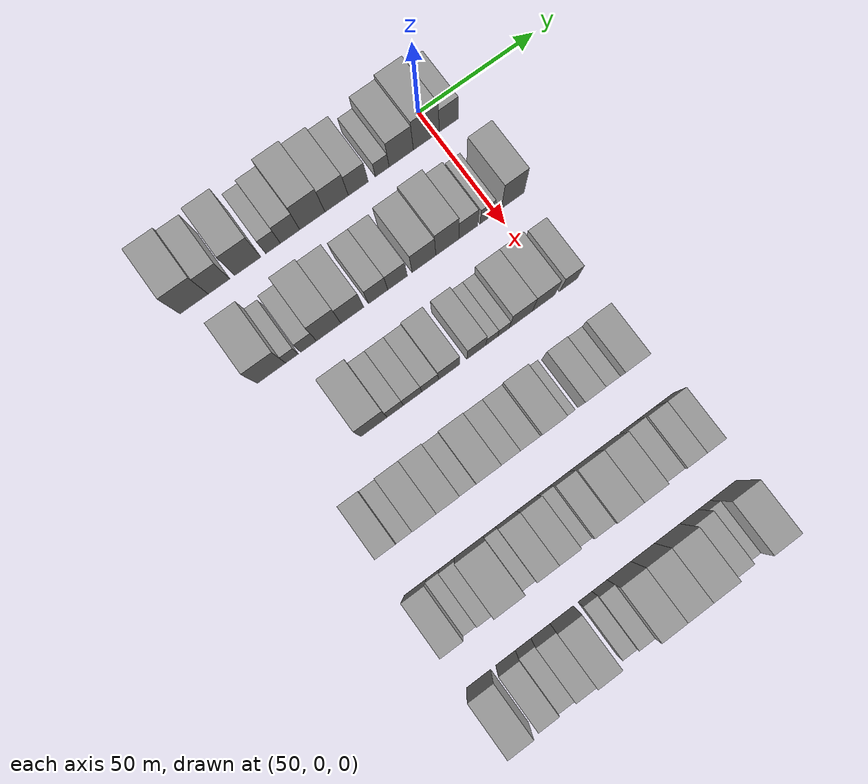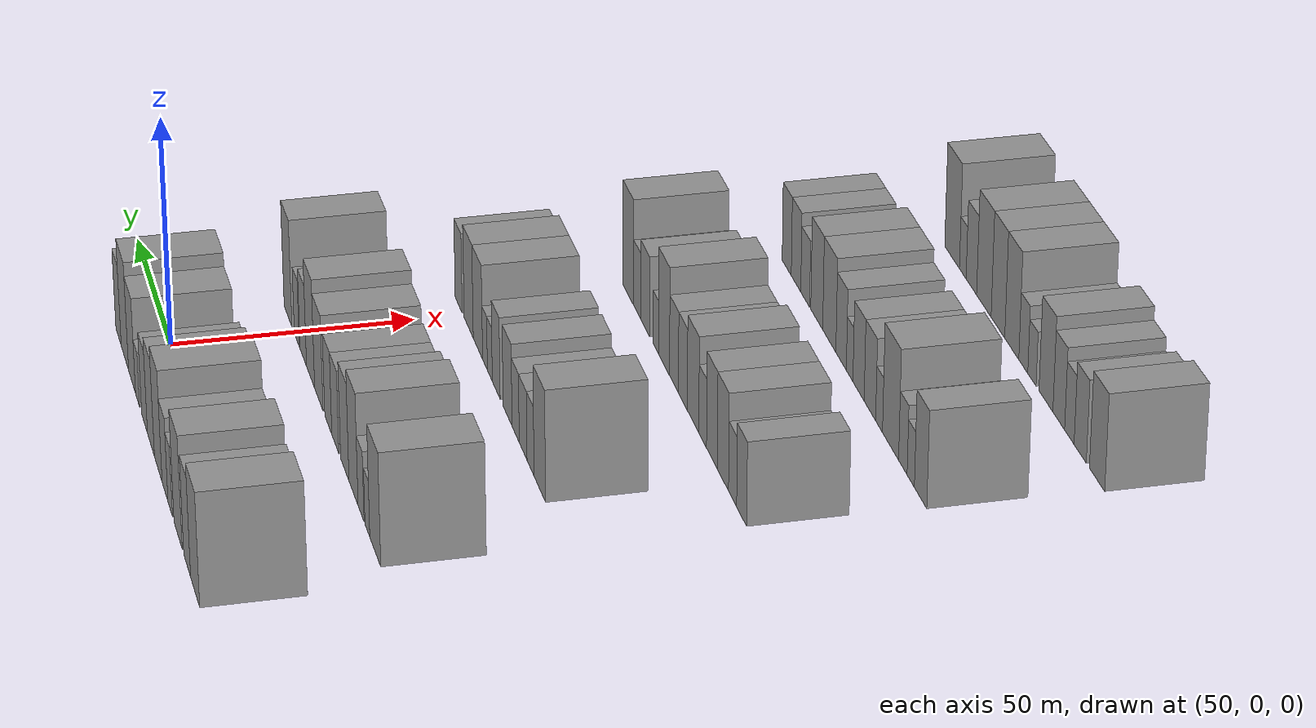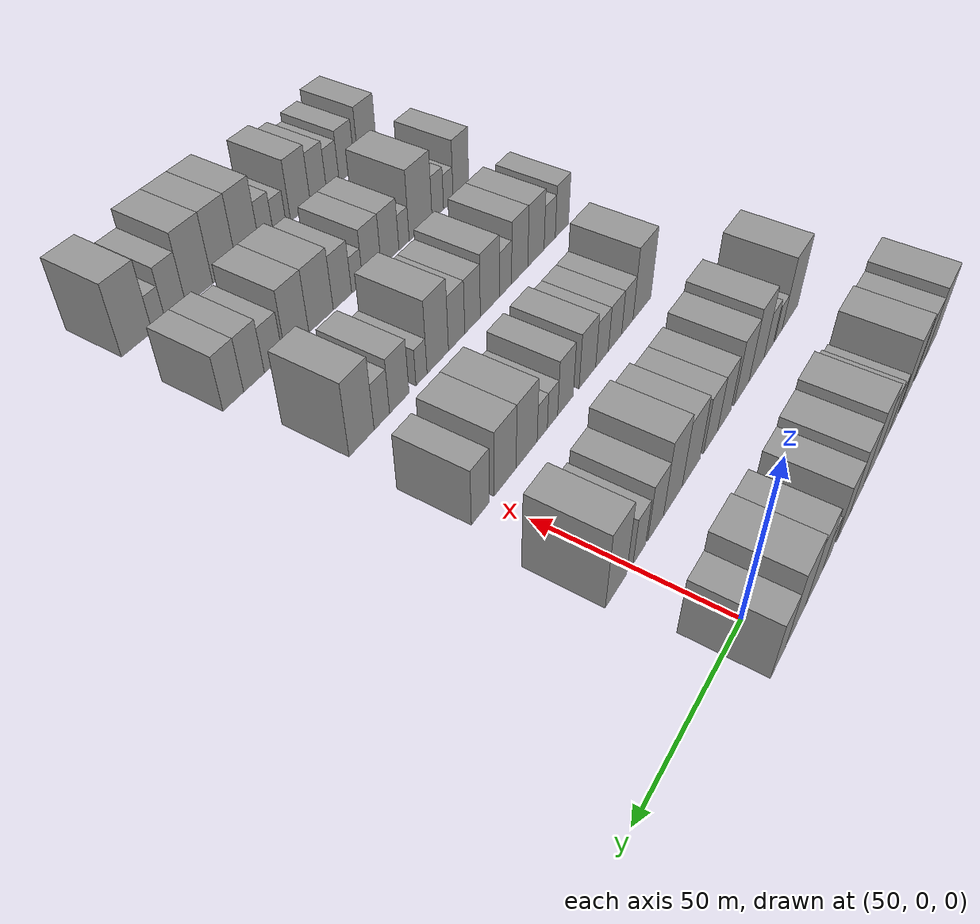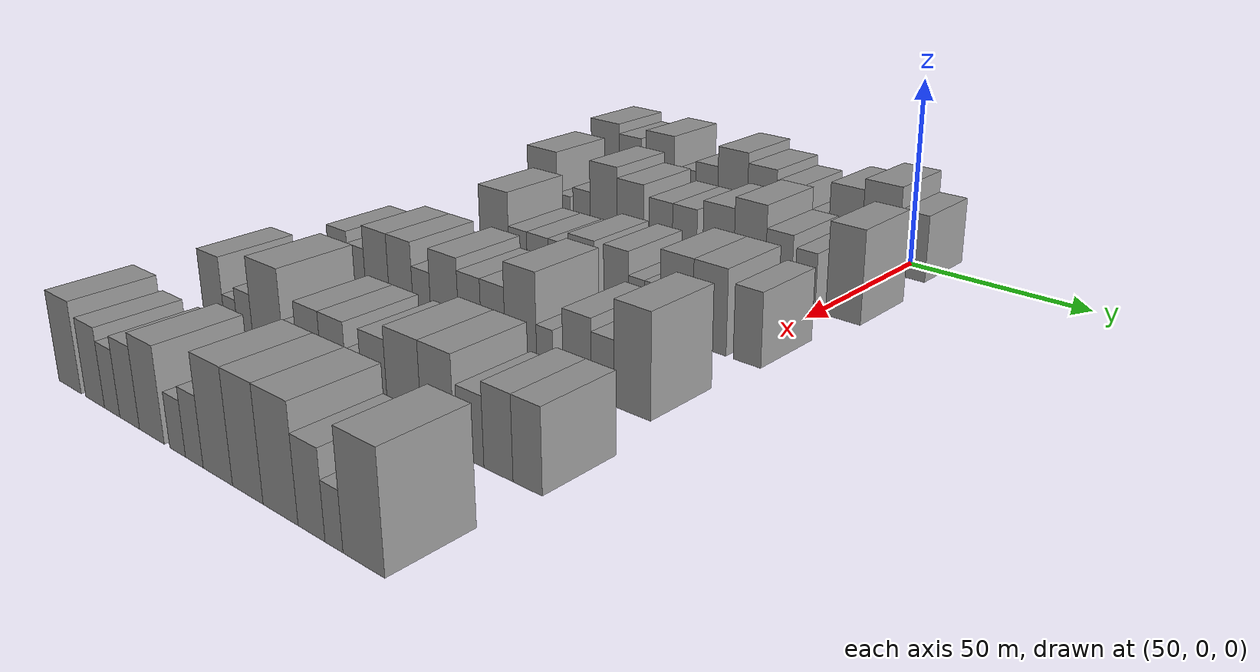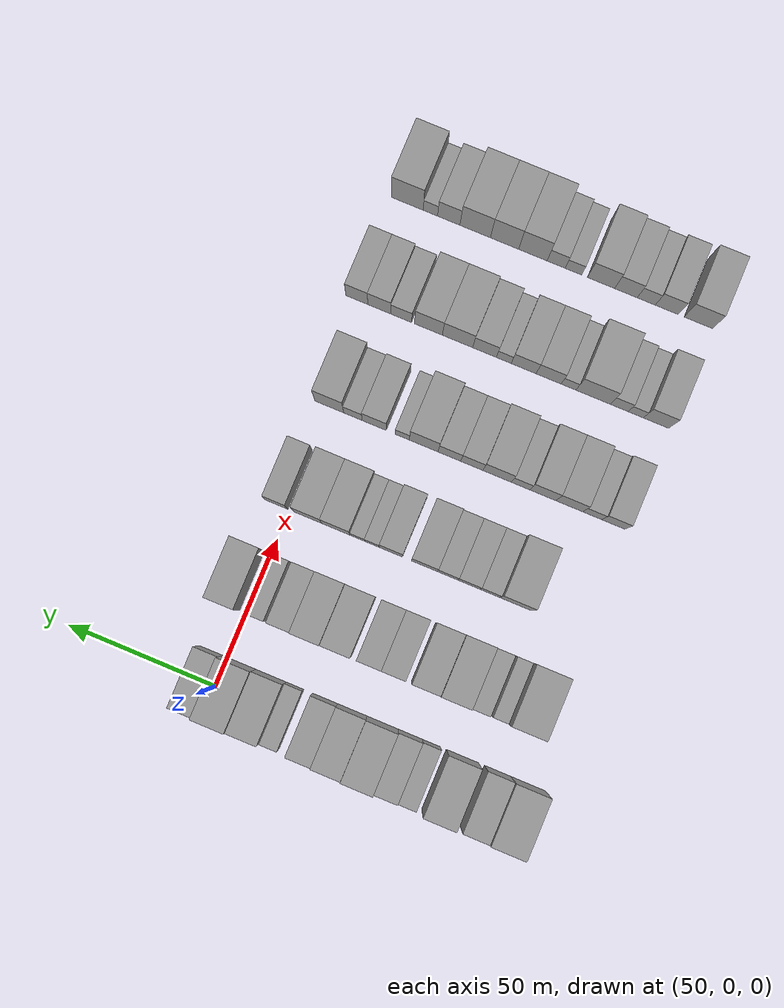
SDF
<sdf version="1.6">
 <world name="default">
  <model name="building_43">
   <static>1</static>
   <pose>50.0000 -101.3900 0 0.000000 0.000000 0.000000</pose>
   <link name="link">
    <pose>0 0 12.00 0 0 0</pose>
    <collision name="collision"><geometry><box><size>20.0000 11.5441 24.0000</size></box></geometry></collision>
    <visual name="visual">
     <cast_shadows>0</cast_shadows>
     <geometry><box><size>20.0000 11.5441 24.0000</size></box></geometry>
     <material>
      <script>
       <uri>model://grey_wall/materials/scripts</uri>
       <uri>model://grey_wall/materials/textures</uri>
       <name>vrc/grey_wall</name>
      </script>
     </material>
    </visual>
   </link>
  </model>
  <model name="building_44">
   <static>1</static>
   <pose>50.0000 -91.1934 0 0.000000 0.000000 0.000000</pose>
   <link name="link">
    <pose>0 0 10.50 0 0 0</pose>
    <collision name="collision"><geometry><box><size>20.0000 8.8491 21.0000</size></box></geometry></collision>
    <visual name="visual">
     <cast_shadows>0</cast_shadows>
     <geometry><box><size>20.0000 8.8491 21.0000</size></box></geometry>
     <material>
      <script>
       <uri>model://grey_wall/materials/scripts</uri>
       <uri>model://grey_wall/materials/textures</uri>
       <name>vrc/grey_wall</name>
      </script>
     </material>
    </visual>
   </link>
  </model>
  <model name="building_45">
   <static>1</static>
   <pose>50.0000 -79.3467 0 0.000000 0.000000 0.000000</pose>
   <link name="link">
    <pose>0 0 12.00 0 0 0</pose>
    <collision name="collision"><geometry><box><size>20.0000 10.8444 24.0000</size></box></geometry></collision>
    <visual name="visual">
     <cast_shadows>0</cast_shadows>
     <geometry><box><size>20.0000 10.8444 24.0000</size></box></geometry>
     <material>
      <script>
       <uri>model://grey_wall/materials/scripts</uri>
       <uri>model://grey_wall/materials/textures</uri>
       <name>vrc/grey_wall</name>
      </script>
     </material>
    </visual>
   </link>
  </model>
  <model name="building_46">
   <static>1</static>
   <pose>50.0000 -68.8663 0 0.000000 0.000000 0.000000</pose>
   <link name="link">
    <pose>0 0 7.50 0 0 0</pose>
    <collision name="collision"><geometry><box><size>20.0000 6.1165 15.0000</size></box></geometry></collision>
    <visual name="visual">
     <cast_shadows>0</cast_shadows>
     <geometry><box><size>20.0000 6.1165 15.0000</size></box></geometry>
     <material>
      <script>
       <uri>model://grey_wall/materials/scripts</uri>
       <uri>model://grey_wall/materials/textures</uri>
       <name>vrc/grey_wall</name>
      </script>
     </material>
    </visual>
   </link>
  </model>
  <model name="building_47">
   <static>1</static>
   <pose>50.0000 -61.7780 0 0.000000 0.000000 0.000000</pose>
   <link name="link">
    <pose>0 0 9.00 0 0 0</pose>
    <collision name="collision"><geometry><box><size>20.0000 8.0601 18.0000</size></box></geometry></collision>
    <visual name="visual">
     <cast_shadows>0</cast_shadows>
     <geometry><box><size>20.0000 8.0601 18.0000</size></box></geometry>
     <material>
      <script>
       <uri>model://grey_wall/materials/scripts</uri>
       <uri>model://grey_wall/materials/textures</uri>
       <name>vrc/grey_wall</name>
      </script>
     </material>
    </visual>
   </link>
  </model>
  <model name="building_48">
   <static>1</static>
   <pose>50.0000 -52.4674 0 0.000000 0.000000 0.000000</pose>
   <link name="link">
    <pose>0 0 12.00 0 0 0</pose>
    <collision name="collision"><geometry><box><size>20.0000 10.5612 24.0000</size></box></geometry></collision>
    <visual name="visual">
     <cast_shadows>0</cast_shadows>
     <geometry><box><size>20.0000 10.5612 24.0000</size></box></geometry>
     <material>
      <script>
       <uri>model://grey_wall/materials/scripts</uri>
       <uri>model://grey_wall/materials/textures</uri>
       <name>vrc/grey_wall</name>
      </script>
     </material>
    </visual>
   </link>
  </model>
  <model name="building_49">
   <static>1</static>
   <pose>50.0000 -42.2517 0 0.000000 0.000000 0.000000</pose>
   <link name="link">
    <pose>0 0 10.50 0 0 0</pose>
    <collision name="collision"><geometry><box><size>20.0000 9.8702 21.0000</size></box></geometry></collision>
    <visual name="visual">
     <cast_shadows>0</cast_shadows>
     <geometry><box><size>20.0000 9.8702 21.0000</size></box></geometry>
     <material>
      <script>
       <uri>model://grey_wall/materials/scripts</uri>
       <uri>model://grey_wall/materials/textures</uri>
       <name>vrc/grey_wall</name>
      </script>
     </material>
    </visual>
   </link>
  </model>
  <model name="building_50">
   <static>1</static>
   <pose>50.0000 -33.1068 0 0.000000 0.000000 0.000000</pose>
   <link name="link">
    <pose>0 0 9.00 0 0 0</pose>
    <collision name="collision"><geometry><box><size>20.0000 8.4197 18.0000</size></box></geometry></collision>
    <visual name="visual">
     <cast_shadows>0</cast_shadows>
     <geometry><box><size>20.0000 8.4197 18.0000</size></box></geometry>
     <material>
      <script>
       <uri>model://grey_wall/materials/scripts</uri>
       <uri>model://grey_wall/materials/textures</uri>
       <name>vrc/grey_wall</name>
      </script>
     </material>
    </visual>
   </link>
  </model>
  <model name="building_51">
   <static>1</static>
   <pose>50.0000 -22.9282 0 0.000000 0.000000 0.000000</pose>
   <link name="link">
    <pose>0 0 6.00 0 0 0</pose>
    <collision name="collision"><geometry><box><size>20.0000 5.9374 12.0000</size></box></geometry></collision>
    <visual name="visual">
     <cast_shadows>0</cast_shadows>
     <geometry><box><size>20.0000 5.9374 12.0000</size></box></geometry>
     <material>
      <script>
       <uri>model://grey_wall/materials/scripts</uri>
       <uri>model://grey_wall/materials/textures</uri>
       <name>vrc/grey_wall</name>
      </script>
     </material>
    </visual>
   </link>
  </model>
  <model name="building_52">
   <static>1</static>
   <pose>50.0000 -14.8010 0 0.000000 0.000000 0.000000</pose>
   <link name="link">
    <pose>0 0 10.50 0 0 0</pose>
    <collision name="collision"><geometry><box><size>20.0000 10.3171 21.0000</size></box></geometry></collision>
    <visual name="visual">
     <cast_shadows>0</cast_shadows>
     <geometry><box><size>20.0000 10.3171 21.0000</size></box></geometry>
     <material>
      <script>
       <uri>model://grey_wall/materials/scripts</uri>
       <uri>model://grey_wall/materials/textures</uri>
       <name>vrc/grey_wall</name>
      </script>
     </material>
    </visual>
   </link>
  </model>
  <model name="building_53">
   <static>1</static>
   <pose>50.0000 -4.0733 0 0.000000 0.000000 0.000000</pose>
   <link name="link">
    <pose>0 0 12.00 0 0 0</pose>
    <collision name="collision"><geometry><box><size>20.0000 11.1382 24.0000</size></box></geometry></collision>
    <visual name="visual">
     <cast_shadows>0</cast_shadows>
     <geometry><box><size>20.0000 11.1382 24.0000</size></box></geometry>
     <material>
      <script>
       <uri>model://grey_wall/materials/scripts</uri>
       <uri>model://grey_wall/materials/textures</uri>
       <name>vrc/grey_wall</name>
      </script>
     </material>
    </visual>
   </link>
  </model>
  <model name="building_54">
   <static>1</static>
   <pose>50.0000 5.5672 0 0.000000 0.000000 0.000000</pose>
   <link name="link">
    <pose>0 0 9.00 0 0 0</pose>
    <collision name="collision"><geometry><box><size>20.0000 8.1429 18.0000</size></box></geometry></collision>
    <visual name="visual">
     <cast_shadows>0</cast_shadows>
     <geometry><box><size>20.0000 8.1429 18.0000</size></box></geometry>
     <material>
      <script>
       <uri>model://grey_wall/materials/scripts</uri>
       <uri>model://grey_wall/materials/textures</uri>
       <name>vrc/grey_wall</name>
      </script>
     </material>
    </visual>
   </link>
  </model>
  <model name="building_168">
   <static>1</static>
   <pose>85.0000 -93.7803 0 0.000000 0.000000 0.000000</pose>
   <link name="link">
    <pose>0 0 12.00 0 0 0</pose>
    <collision name="collision"><geometry><box><size>20.0000 11.5986 24.0000</size></box></geometry></collision>
    <visual name="visual">
     <cast_shadows>0</cast_shadows>
     <geometry><box><size>20.0000 11.5986 24.0000</size></box></geometry>
     <material>
      <script>
       <uri>model://grey_wall/materials/scripts</uri>
       <uri>model://grey_wall/materials/textures</uri>
       <name>vrc/grey_wall</name>
      </script>
     </material>
    </visual>
   </link>
  </model>
  <model name="building_169">
   <static>1</static>
   <pose>85.0000 -85.3984 0 0.000000 0.000000 0.000000</pose>
   <link name="link">
    <pose>0 0 6.00 0 0 0</pose>
    <collision name="collision"><geometry><box><size>20.0000 5.1652 12.0000</size></box></geometry></collision>
    <visual name="visual">
     <cast_shadows>0</cast_shadows>
     <geometry><box><size>20.0000 5.1652 12.0000</size></box></geometry>
     <material>
      <script>
       <uri>model://grey_wall/materials/scripts</uri>
       <uri>model://grey_wall/materials/textures</uri>
       <name>vrc/grey_wall</name>
      </script>
     </material>
    </visual>
   </link>
  </model>
  <model name="building_170">
   <static>1</static>
   <pose>85.0000 -78.5708 0 0.000000 0.000000 0.000000</pose>
   <link name="link">
    <pose>0 0 7.50 0 0 0</pose>
    <collision name="collision"><geometry><box><size>20.0000 6.4899 15.0000</size></box></geometry></collision>
    <visual name="visual">
     <cast_shadows>0</cast_shadows>
     <geometry><box><size>20.0000 6.4899 15.0000</size></box></geometry>
     <material>
      <script>
       <uri>model://grey_wall/materials/scripts</uri>
       <uri>model://grey_wall/materials/textures</uri>
       <name>vrc/grey_wall</name>
      </script>
     </material>
    </visual>
   </link>
  </model>
  <model name="building_171">
   <static>1</static>
   <pose>85.0000 -70.2937 0 0.000000 0.000000 0.000000</pose>
   <link name="link">
    <pose>0 0 12.00 0 0 0</pose>
    <collision name="collision"><geometry><box><size>20.0000 10.0643 24.0000</size></box></geometry></collision>
    <visual name="visual">
     <cast_shadows>0</cast_shadows>
     <geometry><box><size>20.0000 10.0643 24.0000</size></box></geometry>
     <material>
      <script>
       <uri>model://grey_wall/materials/scripts</uri>
       <uri>model://grey_wall/materials/textures</uri>
       <name>vrc/grey_wall</name>
      </script>
     </material>
    </visual>
   </link>
  </model>
  <model name="building_172">
   <static>1</static>
   <pose>85.0000 -60.5582 0 0.000000 0.000000 0.000000</pose>
   <link name="link">
    <pose>0 0 10.50 0 0 0</pose>
    <collision name="collision"><geometry><box><size>20.0000 9.4066 21.0000</size></box></geometry></collision>
    <visual name="visual">
     <cast_shadows>0</cast_shadows>
     <geometry><box><size>20.0000 9.4066 21.0000</size></box></geometry>
     <material>
      <script>
       <uri>model://grey_wall/materials/scripts</uri>
       <uri>model://grey_wall/materials/textures</uri>
       <name>vrc/grey_wall</name>
      </script>
     </material>
    </visual>
   </link>
  </model>
  <model name="building_173">
   <static>1</static>
   <pose>85.0000 -49.8305 0 0.000000 0.000000 0.000000</pose>
   <link name="link">
    <pose>0 0 9.00 0 0 0</pose>
    <collision name="collision"><geometry><box><size>20.0000 8.0489 18.0000</size></box></geometry></collision>
    <visual name="visual">
     <cast_shadows>0</cast_shadows>
     <geometry><box><size>20.0000 8.0489 18.0000</size></box></geometry>
     <material>
      <script>
       <uri>model://grey_wall/materials/scripts</uri>
       <uri>model://grey_wall/materials/textures</uri>
       <name>vrc/grey_wall</name>
      </script>
     </material>
    </visual>
   </link>
  </model>
  <model name="building_174">
   <static>1</static>
   <pose>85.0000 -41.7130 0 0.000000 0.000000 0.000000</pose>
   <link name="link">
    <pose>0 0 9.00 0 0 0</pose>
    <collision name="collision"><geometry><box><size>20.0000 8.1860 18.0000</size></box></geometry></collision>
    <visual name="visual">
     <cast_shadows>0</cast_shadows>
     <geometry><box><size>20.0000 8.1860 18.0000</size></box></geometry>
     <material>
      <script>
       <uri>model://grey_wall/materials/scripts</uri>
       <uri>model://grey_wall/materials/textures</uri>
       <name>vrc/grey_wall</name>
      </script>
     </material>
    </visual>
   </link>
  </model>
  <model name="building_175">
   <static>1</static>
   <pose>85.0000 -30.6315 0 0.000000 0.000000 0.000000</pose>
   <link name="link">
    <pose>0 0 10.50 0 0 0</pose>
    <collision name="collision"><geometry><box><size>20.0000 9.9771 21.0000</size></box></geometry></collision>
    <visual name="visual">
     <cast_shadows>0</cast_shadows>
     <geometry><box><size>20.0000 9.9771 21.0000</size></box></geometry>
     <material>
      <script>
       <uri>model://grey_wall/materials/scripts</uri>
       <uri>model://grey_wall/materials/textures</uri>
       <name>vrc/grey_wall</name>
      </script>
     </material>
    </visual>
   </link>
  </model>
  <model name="building_176">
   <static>1</static>
   <pose>85.0000 -20.7263 0 0.000000 0.000000 0.000000</pose>
   <link name="link">
    <pose>0 0 12.00 0 0 0</pose>
    <collision name="collision"><geometry><box><size>20.0000 9.8332 24.0000</size></box></geometry></collision>
    <visual name="visual">
     <cast_shadows>0</cast_shadows>
     <geometry><box><size>20.0000 9.8332 24.0000</size></box></geometry>
     <material>
      <script>
       <uri>model://grey_wall/materials/scripts</uri>
       <uri>model://grey_wall/materials/textures</uri>
       <name>vrc/grey_wall</name>
      </script>
     </material>
    </visual>
   </link>
  </model>
  <model name="building_177">
   <static>1</static>
   <pose>85.0000 -11.8344 0 0.000000 0.000000 0.000000</pose>
   <link name="link">
    <pose>0 0 9.00 0 0 0</pose>
    <collision name="collision"><geometry><box><size>20.0000 7.9506 18.0000</size></box></geometry></collision>
    <visual name="visual">
     <cast_shadows>0</cast_shadows>
     <geometry><box><size>20.0000 7.9506 18.0000</size></box></geometry>
     <material>
      <script>
       <uri>model://grey_wall/materials/scripts</uri>
       <uri>model://grey_wall/materials/textures</uri>
       <name>vrc/grey_wall</name>
      </script>
     </material>
    </visual>
   </link>
  </model>
  <model name="building_178">
   <static>1</static>
   <pose>85.0000 -3.7967 0 0.000000 0.000000 0.000000</pose>
   <link name="link">
    <pose>0 0 7.50 0 0 0</pose>
    <collision name="collision"><geometry><box><size>20.0000 6.1247 15.0000</size></box></geometry></collision>
    <visual name="visual">
     <cast_shadows>0</cast_shadows>
     <geometry><box><size>20.0000 6.1247 15.0000</size></box></geometry>
     <material>
      <script>
       <uri>model://grey_wall/materials/scripts</uri>
       <uri>model://grey_wall/materials/textures</uri>
       <name>vrc/grey_wall</name>
      </script>
     </material>
    </visual>
   </link>
  </model>
  <model name="building_179">
   <static>1</static>
   <pose>85.0000 7.1411 0 0.000000 0.000000 0.000000</pose>
   <link name="link">
    <pose>0 0 12.00 0 0 0</pose>
    <collision name="collision"><geometry><box><size>20.0000 9.7510 24.0000</size></box></geometry></collision>
    <visual name="visual">
     <cast_shadows>0</cast_shadows>
     <geometry><box><size>20.0000 9.7510 24.0000</size></box></geometry>
     <material>
      <script>
       <uri>model://grey_wall/materials/scripts</uri>
       <uri>model://grey_wall/materials/textures</uri>
       <name>vrc/grey_wall</name>
      </script>
     </material>
    </visual>
   </link>
  </model>
  <model name="building_293">
   <static>1</static>
   <pose>120.0000 -76.6047 0 0.000000 0.000000 0.000000</pose>
   <link name="link">
    <pose>0 0 12.00 0 0 0</pose>
    <collision name="collision"><geometry><box><size>20.0000 10.7402 24.0000</size></box></geometry></collision>
    <visual name="visual">
     <cast_shadows>0</cast_shadows>
     <geometry><box><size>20.0000 10.7402 24.0000</size></box></geometry>
     <material>
      <script>
       <uri>model://grey_wall/materials/scripts</uri>
       <uri>model://grey_wall/materials/textures</uri>
       <name>vrc/grey_wall</name>
      </script>
     </material>
    </visual>
   </link>
  </model>
  <model name="building_294">
   <static>1</static>
   <pose>120.0000 -67.9153 0 0.000000 0.000000 0.000000</pose>
   <link name="link">
    <pose>0 0 7.50 0 0 0</pose>
    <collision name="collision"><geometry><box><size>20.0000 6.6384 15.0000</size></box></geometry></collision>
    <visual name="visual">
     <cast_shadows>0</cast_shadows>
     <geometry><box><size>20.0000 6.6384 15.0000</size></box></geometry>
     <material>
      <script>
       <uri>model://grey_wall/materials/scripts</uri>
       <uri>model://grey_wall/materials/textures</uri>
       <name>vrc/grey_wall</name>
      </script>
     </material>
    </visual>
   </link>
  </model>
  <model name="building_295">
   <static>1</static>
   <pose>120.0000 -60.8540 0 0.000000 0.000000 0.000000</pose>
   <link name="link">
    <pose>0 0 7.50 0 0 0</pose>
    <collision name="collision"><geometry><box><size>20.0000 7.4843 15.0000</size></box></geometry></collision>
    <visual name="visual">
     <cast_shadows>0</cast_shadows>
     <geometry><box><size>20.0000 7.4843 15.0000</size></box></geometry>
     <material>
      <script>
       <uri>model://grey_wall/materials/scripts</uri>
       <uri>model://grey_wall/materials/textures</uri>
       <name>vrc/grey_wall</name>
      </script>
     </material>
    </visual>
   </link>
  </model>
  <model name="building_296">
   <static>1</static>
   <pose>120.0000 -53.6353 0 0.000000 0.000000 0.000000</pose>
   <link name="link">
    <pose>0 0 7.50 0 0 0</pose>
    <collision name="collision"><geometry><box><size>20.0000 6.9530 15.0000</size></box></geometry></collision>
    <visual name="visual">
     <cast_shadows>0</cast_shadows>
     <geometry><box><size>20.0000 6.9530 15.0000</size></box></geometry>
     <material>
      <script>
       <uri>model://grey_wall/materials/scripts</uri>
       <uri>model://grey_wall/materials/textures</uri>
       <name>vrc/grey_wall</name>
      </script>
     </material>
    </visual>
   </link>
  </model>
  <model name="building_297">
   <static>1</static>
   <pose>120.0000 -45.7761 0 0.000000 0.000000 0.000000</pose>
   <link name="link">
    <pose>0 0 9.00 0 0 0</pose>
    <collision name="collision"><geometry><box><size>20.0000 8.7654 18.0000</size></box></geometry></collision>
    <visual name="visual">
     <cast_shadows>0</cast_shadows>
     <geometry><box><size>20.0000 8.7654 18.0000</size></box></geometry>
     <material>
      <script>
       <uri>model://grey_wall/materials/scripts</uri>
       <uri>model://grey_wall/materials/textures</uri>
       <name>vrc/grey_wall</name>
      </script>
     </material>
    </visual>
   </link>
  </model>
  <model name="building_298">
   <static>1</static>
   <pose>120.0000 -34.4571 0 0.000000 0.000000 0.000000</pose>
   <link name="link">
    <pose>0 0 9.00 0 0 0</pose>
    <collision name="collision"><geometry><box><size>20.0000 7.8726 18.0000</size></box></geometry></collision>
    <visual name="visual">
     <cast_shadows>0</cast_shadows>
     <geometry><box><size>20.0000 7.8726 18.0000</size></box></geometry>
     <material>
      <script>
       <uri>model://grey_wall/materials/scripts</uri>
       <uri>model://grey_wall/materials/textures</uri>
       <name>vrc/grey_wall</name>
      </script>
     </material>
    </visual>
   </link>
  </model>
  <model name="building_299">
   <static>1</static>
   <pose>120.0000 -28.0157 0 0.000000 0.000000 0.000000</pose>
   <link name="link">
    <pose>0 0 6.00 0 0 0</pose>
    <collision name="collision"><geometry><box><size>20.0000 5.0102 12.0000</size></box></geometry></collision>
    <visual name="visual">
     <cast_shadows>0</cast_shadows>
     <geometry><box><size>20.0000 5.0102 12.0000</size></box></geometry>
     <material>
      <script>
       <uri>model://grey_wall/materials/scripts</uri>
       <uri>model://grey_wall/materials/textures</uri>
       <name>vrc/grey_wall</name>
      </script>
     </material>
    </visual>
   </link>
  </model>
  <model name="building_300">
   <static>1</static>
   <pose>120.0000 -23.0753 0 0.000000 0.000000 0.000000</pose>
   <link name="link">
    <pose>0 0 6.00 0 0 0</pose>
    <collision name="collision"><geometry><box><size>20.0000 4.8705 12.0000</size></box></geometry></collision>
    <visual name="visual">
     <cast_shadows>0</cast_shadows>
     <geometry><box><size>20.0000 4.8705 12.0000</size></box></geometry>
     <material>
      <script>
       <uri>model://grey_wall/materials/scripts</uri>
       <uri>model://grey_wall/materials/textures</uri>
       <name>vrc/grey_wall</name>
      </script>
     </material>
    </visual>
   </link>
  </model>
  <model name="building_301">
   <static>1</static>
   <pose>120.0000 -15.7947 0 0.000000 0.000000 0.000000</pose>
   <link name="link">
    <pose>0 0 10.50 0 0 0</pose>
    <collision name="collision"><geometry><box><size>20.0000 9.6907 21.0000</size></box></geometry></collision>
    <visual name="visual">
     <cast_shadows>0</cast_shadows>
     <geometry><box><size>20.0000 9.6907 21.0000</size></box></geometry>
     <material>
      <script>
       <uri>model://grey_wall/materials/scripts</uri>
       <uri>model://grey_wall/materials/textures</uri>
       <name>vrc/grey_wall</name>
      </script>
     </material>
    </visual>
   </link>
  </model>
  <model name="building_302">
   <static>1</static>
   <pose>120.0000 -6.1326 0 0.000000 0.000000 0.000000</pose>
   <link name="link">
    <pose>0 0 10.50 0 0 0</pose>
    <collision name="collision"><geometry><box><size>20.0000 9.6334 21.0000</size></box></geometry></collision>
    <visual name="visual">
     <cast_shadows>0</cast_shadows>
     <geometry><box><size>20.0000 9.6334 21.0000</size></box></geometry>
     <material>
      <script>
       <uri>model://grey_wall/materials/scripts</uri>
       <uri>model://grey_wall/materials/textures</uri>
       <name>vrc/grey_wall</name>
      </script>
     </material>
    </visual>
   </link>
  </model>
  <model name="building_303">
   <static>1</static>
   <pose>120.0000 4.4628 0 0.000000 0.000000 0.000000</pose>
   <link name="link">
    <pose>0 0 9.00 0 0 0</pose>
    <collision name="collision"><geometry><box><size>20.0000 7.5576 18.0000</size></box></geometry></collision>
    <visual name="visual">
     <cast_shadows>0</cast_shadows>
     <geometry><box><size>20.0000 7.5576 18.0000</size></box></geometry>
     <material>
      <script>
       <uri>model://grey_wall/materials/scripts</uri>
       <uri>model://grey_wall/materials/textures</uri>
       <name>vrc/grey_wall</name>
      </script>
     </material>
    </visual>
   </link>
  </model>
  <model name="building_415">
   <static>1</static>
   <pose>155.0000 -95.7121 0 0.000000 0.000000 0.000000</pose>
   <link name="link">
    <pose>0 0 9.00 0 0 0</pose>
    <collision name="collision"><geometry><box><size>20.0000 7.8575 18.0000</size></box></geometry></collision>
    <visual name="visual">
     <cast_shadows>0</cast_shadows>
     <geometry><box><size>20.0000 7.8575 18.0000</size></box></geometry>
     <material>
      <script>
       <uri>model://grey_wall/materials/scripts</uri>
       <uri>model://grey_wall/materials/textures</uri>
       <name>vrc/grey_wall</name>
      </script>
     </material>
    </visual>
   </link>
  </model>
  <model name="building_416">
   <static>1</static>
   <pose>155.0000 -88.5434 0 0.000000 0.000000 0.000000</pose>
   <link name="link">
    <pose>0 0 7.50 0 0 0</pose>
    <collision name="collision"><geometry><box><size>20.0000 6.4799 15.0000</size></box></geometry></collision>
    <visual name="visual">
     <cast_shadows>0</cast_shadows>
     <geometry><box><size>20.0000 6.4799 15.0000</size></box></geometry>
     <material>
      <script>
       <uri>model://grey_wall/materials/scripts</uri>
       <uri>model://grey_wall/materials/textures</uri>
       <name>vrc/grey_wall</name>
      </script>
     </material>
    </visual>
   </link>
  </model>
  <model name="building_417">
   <static>1</static>
   <pose>155.0000 -80.7467 0 0.000000 0.000000 0.000000</pose>
   <link name="link">
    <pose>0 0 10.50 0 0 0</pose>
    <collision name="collision"><geometry><box><size>20.0000 9.1133 21.0000</size></box></geometry></collision>
    <visual name="visual">
     <cast_shadows>0</cast_shadows>
     <geometry><box><size>20.0000 9.1133 21.0000</size></box></geometry>
     <material>
      <script>
       <uri>model://grey_wall/materials/scripts</uri>
       <uri>model://grey_wall/materials/textures</uri>
       <name>vrc/grey_wall</name>
      </script>
     </material>
    </visual>
   </link>
  </model>
  <model name="building_418">
   <static>1</static>
   <pose>155.0000 -71.7793 0 0.000000 0.000000 0.000000</pose>
   <link name="link">
    <pose>0 0 10.50 0 0 0</pose>
    <collision name="collision"><geometry><box><size>20.0000 8.8216 21.0000</size></box></geometry></collision>
    <visual name="visual">
     <cast_shadows>0</cast_shadows>
     <geometry><box><size>20.0000 8.8216 21.0000</size></box></geometry>
     <material>
      <script>
       <uri>model://grey_wall/materials/scripts</uri>
       <uri>model://grey_wall/materials/textures</uri>
       <name>vrc/grey_wall</name>
      </script>
     </material>
    </visual>
   </link>
  </model>
  <model name="building_419">
   <static>1</static>
   <pose>155.0000 -64.1817 0 0.000000 0.000000 0.000000</pose>
   <link name="link">
    <pose>0 0 7.50 0 0 0</pose>
    <collision name="collision"><geometry><box><size>20.0000 6.3736 15.0000</size></box></geometry></collision>
    <visual name="visual">
     <cast_shadows>0</cast_shadows>
     <geometry><box><size>20.0000 6.3736 15.0000</size></box></geometry>
     <material>
      <script>
       <uri>model://grey_wall/materials/scripts</uri>
       <uri>model://grey_wall/materials/textures</uri>
       <name>vrc/grey_wall</name>
      </script>
     </material>
    </visual>
   </link>
  </model>
  <model name="building_420">
   <static>1</static>
   <pose>155.0000 -56.1588 0 0.000000 0.000000 0.000000</pose>
   <link name="link">
    <pose>0 0 10.50 0 0 0</pose>
    <collision name="collision"><geometry><box><size>20.0000 9.6722 21.0000</size></box></geometry></collision>
    <visual name="visual">
     <cast_shadows>0</cast_shadows>
     <geometry><box><size>20.0000 9.6722 21.0000</size></box></geometry>
     <material>
      <script>
       <uri>model://grey_wall/materials/scripts</uri>
       <uri>model://grey_wall/materials/textures</uri>
       <name>vrc/grey_wall</name>
      </script>
     </material>
    </visual>
   </link>
  </model>
  <model name="building_421">
   <static>1</static>
   <pose>155.0000 -47.5231 0 0.000000 0.000000 0.000000</pose>
   <link name="link">
    <pose>0 0 9.00 0 0 0</pose>
    <collision name="collision"><geometry><box><size>20.0000 7.5994 18.0000</size></box></geometry></collision>
    <visual name="visual">
     <cast_shadows>0</cast_shadows>
     <geometry><box><size>20.0000 7.5994 18.0000</size></box></geometry>
     <material>
      <script>
       <uri>model://grey_wall/materials/scripts</uri>
       <uri>model://grey_wall/materials/textures</uri>
       <name>vrc/grey_wall</name>
      </script>
     </material>
    </visual>
   </link>
  </model>
  <model name="building_422">
   <static>1</static>
   <pose>155.0000 -39.8527 0 0.000000 0.000000 0.000000</pose>
   <link name="link">
    <pose>0 0 9.00 0 0 0</pose>
    <collision name="collision"><geometry><box><size>20.0000 7.7414 18.0000</size></box></geometry></collision>
    <visual name="visual">
     <cast_shadows>0</cast_shadows>
     <geometry><box><size>20.0000 7.7414 18.0000</size></box></geometry>
     <material>
      <script>
       <uri>model://grey_wall/materials/scripts</uri>
       <uri>model://grey_wall/materials/textures</uri>
       <name>vrc/grey_wall</name>
      </script>
     </material>
    </visual>
   </link>
  </model>
  <model name="building_423">
   <static>1</static>
   <pose>155.0000 -31.0823 0 0.000000 0.000000 0.000000</pose>
   <link name="link">
    <pose>0 0 12.00 0 0 0</pose>
    <collision name="collision"><geometry><box><size>20.0000 9.7992 24.0000</size></box></geometry></collision>
    <visual name="visual">
     <cast_shadows>0</cast_shadows>
     <geometry><box><size>20.0000 9.7992 24.0000</size></box></geometry>
     <material>
      <script>
       <uri>model://grey_wall/materials/scripts</uri>
       <uri>model://grey_wall/materials/textures</uri>
       <name>vrc/grey_wall</name>
      </script>
     </material>
    </visual>
   </link>
  </model>
  <model name="building_424">
   <static>1</static>
   <pose>155.0000 -23.7386 0 0.000000 0.000000 0.000000</pose>
   <link name="link">
    <pose>0 0 6.00 0 0 0</pose>
    <collision name="collision"><geometry><box><size>20.0000 4.8882 12.0000</size></box></geometry></collision>
    <visual name="visual">
     <cast_shadows>0</cast_shadows>
     <geometry><box><size>20.0000 4.8882 12.0000</size></box></geometry>
     <material>
      <script>
       <uri>model://grey_wall/materials/scripts</uri>
       <uri>model://grey_wall/materials/textures</uri>
       <name>vrc/grey_wall</name>
      </script>
     </material>
    </visual>
   </link>
  </model>
  <model name="building_425">
   <static>1</static>
   <pose>155.0000 -14.1701 0 0.000000 0.000000 0.000000</pose>
   <link name="link">
    <pose>0 0 9.00 0 0 0</pose>
    <collision name="collision"><geometry><box><size>20.0000 8.2486 18.0000</size></box></geometry></collision>
    <visual name="visual">
     <cast_shadows>0</cast_shadows>
     <geometry><box><size>20.0000 8.2486 18.0000</size></box></geometry>
     <material>
      <script>
       <uri>model://grey_wall/materials/scripts</uri>
       <uri>model://grey_wall/materials/textures</uri>
       <name>vrc/grey_wall</name>
      </script>
     </material>
    </visual>
   </link>
  </model>
  <model name="building_426">
   <static>1</static>
   <pose>155.0000 -6.8807 0 0.000000 0.000000 0.000000</pose>
   <link name="link">
    <pose>0 0 7.50 0 0 0</pose>
    <collision name="collision"><geometry><box><size>20.0000 6.3303 15.0000</size></box></geometry></collision>
    <visual name="visual">
     <cast_shadows>0</cast_shadows>
     <geometry><box><size>20.0000 6.3303 15.0000</size></box></geometry>
     <material>
      <script>
       <uri>model://grey_wall/materials/scripts</uri>
       <uri>model://grey_wall/materials/textures</uri>
       <name>vrc/grey_wall</name>
      </script>
     </material>
    </visual>
   </link>
  </model>
  <model name="building_427">
   <static>1</static>
   <pose>155.0000 1.2386 0 0.000000 0.000000 0.000000</pose>
   <link name="link">
    <pose>0 0 12.00 0 0 0</pose>
    <collision name="collision"><geometry><box><size>20.0000 9.9083 24.0000</size></box></geometry></collision>
    <visual name="visual">
     <cast_shadows>0</cast_shadows>
     <geometry><box><size>20.0000 9.9083 24.0000</size></box></geometry>
     <material>
      <script>
       <uri>model://grey_wall/materials/scripts</uri>
       <uri>model://grey_wall/materials/textures</uri>
       <name>vrc/grey_wall</name>
      </script>
     </material>
    </visual>
   </link>
  </model>
  <model name="building_538">
   <static>1</static>
   <pose>190.0000 -96.2152 0 0.000000 0.000000 0.000000</pose>
   <link name="link">
    <pose>0 0 10.50 0 0 0</pose>
    <collision name="collision"><geometry><box><size>20.0000 8.6756 21.0000</size></box></geometry></collision>
    <visual name="visual">
     <cast_shadows>0</cast_shadows>
     <geometry><box><size>20.0000 8.6756 21.0000</size></box></geometry>
     <material>
      <script>
       <uri>model://grey_wall/materials/scripts</uri>
       <uri>model://grey_wall/materials/textures</uri>
       <name>vrc/grey_wall</name>
      </script>
     </material>
    </visual>
   </link>
  </model>
  <model name="building_539">
   <static>1</static>
   <pose>190.0000 -89.2864 0 0.000000 0.000000 0.000000</pose>
   <link name="link">
    <pose>0 0 6.00 0 0 0</pose>
    <collision name="collision"><geometry><box><size>20.0000 5.1819 12.0000</size></box></geometry></collision>
    <visual name="visual">
     <cast_shadows>0</cast_shadows>
     <geometry><box><size>20.0000 5.1819 12.0000</size></box></geometry>
     <material>
      <script>
       <uri>model://grey_wall/materials/scripts</uri>
       <uri>model://grey_wall/materials/textures</uri>
       <name>vrc/grey_wall</name>
      </script>
     </material>
    </visual>
   </link>
  </model>
  <model name="building_540">
   <static>1</static>
   <pose>190.0000 -83.6494 0 0.000000 0.000000 0.000000</pose>
   <link name="link">
    <pose>0 0 7.50 0 0 0</pose>
    <collision name="collision"><geometry><box><size>20.0000 6.0921 15.0000</size></box></geometry></collision>
    <visual name="visual">
     <cast_shadows>0</cast_shadows>
     <geometry><box><size>20.0000 6.0921 15.0000</size></box></geometry>
     <material>
      <script>
       <uri>model://grey_wall/materials/scripts</uri>
       <uri>model://grey_wall/materials/textures</uri>
       <name>vrc/grey_wall</name>
      </script>
     </material>
    </visual>
   </link>
  </model>
  <model name="building_541">
   <static>1</static>
   <pose>190.0000 -74.7293 0 0.000000 0.000000 0.000000</pose>
   <link name="link">
    <pose>0 0 12.00 0 0 0</pose>
    <collision name="collision"><geometry><box><size>20.0000 11.7479 24.0000</size></box></geometry></collision>
    <visual name="visual">
     <cast_shadows>0</cast_shadows>
     <geometry><box><size>20.0000 11.7479 24.0000</size></box></geometry>
     <material>
      <script>
       <uri>model://grey_wall/materials/scripts</uri>
       <uri>model://grey_wall/materials/textures</uri>
       <name>vrc/grey_wall</name>
      </script>
     </material>
    </visual>
   </link>
  </model>
  <model name="building_542">
   <static>1</static>
   <pose>190.0000 -66.3143 0 0.000000 0.000000 0.000000</pose>
   <link name="link">
    <pose>0 0 6.00 0 0 0</pose>
    <collision name="collision"><geometry><box><size>20.0000 5.0822 12.0000</size></box></geometry></collision>
    <visual name="visual">
     <cast_shadows>0</cast_shadows>
     <geometry><box><size>20.0000 5.0822 12.0000</size></box></geometry>
     <material>
      <script>
       <uri>model://grey_wall/materials/scripts</uri>
       <uri>model://grey_wall/materials/textures</uri>
       <name>vrc/grey_wall</name>
      </script>
     </material>
    </visual>
   </link>
  </model>
  <model name="building_543">
   <static>1</static>
   <pose>190.0000 -59.4727 0 0.000000 0.000000 0.000000</pose>
   <link name="link">
    <pose>0 0 9.00 0 0 0</pose>
    <collision name="collision"><geometry><box><size>20.0000 8.6010 18.0000</size></box></geometry></collision>
    <visual name="visual">
     <cast_shadows>0</cast_shadows>
     <geometry><box><size>20.0000 8.6010 18.0000</size></box></geometry>
     <material>
      <script>
       <uri>model://grey_wall/materials/scripts</uri>
       <uri>model://grey_wall/materials/textures</uri>
       <name>vrc/grey_wall</name>
      </script>
     </material>
    </visual>
   </link>
  </model>
  <model name="building_544">
   <static>1</static>
   <pose>190.0000 -50.9063 0 0.000000 0.000000 0.000000</pose>
   <link name="link">
    <pose>0 0 9.00 0 0 0</pose>
    <collision name="collision"><geometry><box><size>20.0000 8.5318 18.0000</size></box></geometry></collision>
    <visual name="visual">
     <cast_shadows>0</cast_shadows>
     <geometry><box><size>20.0000 8.5318 18.0000</size></box></geometry>
     <material>
      <script>
       <uri>model://grey_wall/materials/scripts</uri>
       <uri>model://grey_wall/materials/textures</uri>
       <name>vrc/grey_wall</name>
      </script>
     </material>
    </visual>
   </link>
  </model>
  <model name="building_545">
   <static>1</static>
   <pose>190.0000 -44.0970 0 0.000000 0.000000 0.000000</pose>
   <link name="link">
    <pose>0 0 6.00 0 0 0</pose>
    <collision name="collision"><geometry><box><size>20.0000 5.0868 12.0000</size></box></geometry></collision>
    <visual name="visual">
     <cast_shadows>0</cast_shadows>
     <geometry><box><size>20.0000 5.0868 12.0000</size></box></geometry>
     <material>
      <script>
       <uri>model://grey_wall/materials/scripts</uri>
       <uri>model://grey_wall/materials/textures</uri>
       <name>vrc/grey_wall</name>
      </script>
     </material>
    </visual>
   </link>
  </model>
  <model name="building_546">
   <static>1</static>
   <pose>190.0000 -37.4909 0 0.000000 0.000000 0.000000</pose>
   <link name="link">
    <pose>0 0 9.00 0 0 0</pose>
    <collision name="collision"><geometry><box><size>20.0000 8.1254 18.0000</size></box></geometry></collision>
    <visual name="visual">
     <cast_shadows>0</cast_shadows>
     <geometry><box><size>20.0000 8.1254 18.0000</size></box></geometry>
     <material>
      <script>
       <uri>model://grey_wall/materials/scripts</uri>
       <uri>model://grey_wall/materials/textures</uri>
       <name>vrc/grey_wall</name>
      </script>
     </material>
    </visual>
   </link>
  </model>
  <model name="building_547">
   <static>1</static>
   <pose>190.0000 -28.2102 0 0.000000 0.000000 0.000000</pose>
   <link name="link">
    <pose>0 0 10.50 0 0 0</pose>
    <collision name="collision"><geometry><box><size>20.0000 10.4360 21.0000</size></box></geometry></collision>
    <visual name="visual">
     <cast_shadows>0</cast_shadows>
     <geometry><box><size>20.0000 10.4360 21.0000</size></box></geometry>
     <material>
      <script>
       <uri>model://grey_wall/materials/scripts</uri>
       <uri>model://grey_wall/materials/textures</uri>
       <name>vrc/grey_wall</name>
      </script>
     </material>
    </visual>
   </link>
  </model>
  <model name="building_548">
   <static>1</static>
   <pose>190.0000 -18.2042 0 0.000000 0.000000 0.000000</pose>
   <link name="link">
    <pose>0 0 10.50 0 0 0</pose>
    <collision name="collision"><geometry><box><size>20.0000 9.5760 21.0000</size></box></geometry></collision>
    <visual name="visual">
     <cast_shadows>0</cast_shadows>
     <geometry><box><size>20.0000 9.5760 21.0000</size></box></geometry>
     <material>
      <script>
       <uri>model://grey_wall/materials/scripts</uri>
       <uri>model://grey_wall/materials/textures</uri>
       <name>vrc/grey_wall</name>
      </script>
     </material>
    </visual>
   </link>
  </model>
  <model name="building_549">
   <static>1</static>
   <pose>190.0000 -8.8168 0 0.000000 0.000000 0.000000</pose>
   <link name="link">
    <pose>0 0 7.50 0 0 0</pose>
    <collision name="collision"><geometry><box><size>20.0000 7.1987 15.0000</size></box></geometry></collision>
    <visual name="visual">
     <cast_shadows>0</cast_shadows>
     <geometry><box><size>20.0000 7.1987 15.0000</size></box></geometry>
     <material>
      <script>
       <uri>model://grey_wall/materials/scripts</uri>
       <uri>model://grey_wall/materials/textures</uri>
       <name>vrc/grey_wall</name>
      </script>
     </material>
    </visual>
   </link>
  </model>
  <model name="building_550">
   <static>1</static>
   <pose>190.0000 -1.2823 0 0.000000 0.000000 0.000000</pose>
   <link name="link">
    <pose>0 0 9.00 0 0 0</pose>
    <collision name="collision"><geometry><box><size>20.0000 7.8702 18.0000</size></box></geometry></collision>
    <visual name="visual">
     <cast_shadows>0</cast_shadows>
     <geometry><box><size>20.0000 7.8702 18.0000</size></box></geometry>
     <material>
      <script>
       <uri>model://grey_wall/materials/scripts</uri>
       <uri>model://grey_wall/materials/textures</uri>
       <name>vrc/grey_wall</name>
      </script>
     </material>
    </visual>
   </link>
  </model>
  <model name="building_551">
   <static>1</static>
   <pose>190.0000 6.4506 0 0.000000 0.000000 0.000000</pose>
   <link name="link">
    <pose>0 0 9.00 0 0 0</pose>
    <collision name="collision"><geometry><box><size>20.0000 7.5957 18.0000</size></box></geometry></collision>
    <visual name="visual">
     <cast_shadows>0</cast_shadows>
     <geometry><box><size>20.0000 7.5957 18.0000</size></box></geometry>
     <material>
      <script>
       <uri>model://grey_wall/materials/scripts</uri>
       <uri>model://grey_wall/materials/textures</uri>
       <name>vrc/grey_wall</name>
      </script>
     </material>
    </visual>
   </link>
  </model>
  <model name="building_669">
   <static>1</static>
   <pose>225.0000 -96.6788 0 0.000000 0.000000 0.000000</pose>
   <link name="link">
    <pose>0 0 10.50 0 0 0</pose>
    <collision name="collision"><geometry><box><size>20.0000 9.7028 21.0000</size></box></geometry></collision>
    <visual name="visual">
     <cast_shadows>0</cast_shadows>
     <geometry><box><size>20.0000 9.7028 21.0000</size></box></geometry>
     <material>
      <script>
       <uri>model://grey_wall/materials/scripts</uri>
       <uri>model://grey_wall/materials/textures</uri>
       <name>vrc/grey_wall</name>
      </script>
     </material>
    </visual>
   </link>
  </model>
  <model name="building_670">
   <static>1</static>
   <pose>225.0000 -85.8841 0 0.000000 0.000000 0.000000</pose>
   <link name="link">
    <pose>0 0 9.00 0 0 0</pose>
    <collision name="collision"><geometry><box><size>20.0000 7.8865 18.0000</size></box></geometry></collision>
    <visual name="visual">
     <cast_shadows>0</cast_shadows>
     <geometry><box><size>20.0000 7.8865 18.0000</size></box></geometry>
     <material>
      <script>
       <uri>model://grey_wall/materials/scripts</uri>
       <uri>model://grey_wall/materials/textures</uri>
       <name>vrc/grey_wall</name>
      </script>
     </material>
    </visual>
   </link>
  </model>
  <model name="building_671">
   <static>1</static>
   <pose>225.0000 -78.8325 0 0.000000 0.000000 0.000000</pose>
   <link name="link">
    <pose>0 0 7.50 0 0 0</pose>
    <collision name="collision"><geometry><box><size>20.0000 6.2168 15.0000</size></box></geometry></collision>
    <visual name="visual">
     <cast_shadows>0</cast_shadows>
     <geometry><box><size>20.0000 6.2168 15.0000</size></box></geometry>
     <material>
      <script>
       <uri>model://grey_wall/materials/scripts</uri>
       <uri>model://grey_wall/materials/textures</uri>
       <name>vrc/grey_wall</name>
      </script>
     </material>
    </visual>
   </link>
  </model>
  <model name="building_672">
   <static>1</static>
   <pose>225.0000 -71.8452 0 0.000000 0.000000 0.000000</pose>
   <link name="link">
    <pose>0 0 9.00 0 0 0</pose>
    <collision name="collision"><geometry><box><size>20.0000 7.7578 18.0000</size></box></geometry></collision>
    <visual name="visual">
     <cast_shadows>0</cast_shadows>
     <geometry><box><size>20.0000 7.7578 18.0000</size></box></geometry>
     <material>
      <script>
       <uri>model://grey_wall/materials/scripts</uri>
       <uri>model://grey_wall/materials/textures</uri>
       <name>vrc/grey_wall</name>
      </script>
     </material>
    </visual>
   </link>
  </model>
  <model name="building_673">
   <static>1</static>
   <pose>225.0000 -63.2914 0 0.000000 0.000000 0.000000</pose>
   <link name="link">
    <pose>0 0 10.50 0 0 0</pose>
    <collision name="collision"><geometry><box><size>20.0000 9.3498 21.0000</size></box></geometry></collision>
    <visual name="visual">
     <cast_shadows>0</cast_shadows>
     <geometry><box><size>20.0000 9.3498 21.0000</size></box></geometry>
     <material>
      <script>
       <uri>model://grey_wall/materials/scripts</uri>
       <uri>model://grey_wall/materials/textures</uri>
       <name>vrc/grey_wall</name>
      </script>
     </material>
    </visual>
   </link>
  </model>
  <model name="building_674">
   <static>1</static>
   <pose>225.0000 -53.7784 0 0.000000 0.000000 0.000000</pose>
   <link name="link">
    <pose>0 0 6.00 0 0 0</pose>
    <collision name="collision"><geometry><box><size>20.0000 5.6762 12.0000</size></box></geometry></collision>
    <visual name="visual">
     <cast_shadows>0</cast_shadows>
     <geometry><box><size>20.0000 5.6762 12.0000</size></box></geometry>
     <material>
      <script>
       <uri>model://grey_wall/materials/scripts</uri>
       <uri>model://grey_wall/materials/textures</uri>
       <name>vrc/grey_wall</name>
      </script>
     </material>
    </visual>
   </link>
  </model>
  <model name="building_675">
   <static>1</static>
   <pose>225.0000 -47.8374 0 0.000000 0.000000 0.000000</pose>
   <link name="link">
    <pose>0 0 7.50 0 0 0</pose>
    <collision name="collision"><geometry><box><size>20.0000 6.2057 15.0000</size></box></geometry></collision>
    <visual name="visual">
     <cast_shadows>0</cast_shadows>
     <geometry><box><size>20.0000 6.2057 15.0000</size></box></geometry>
     <material>
      <script>
       <uri>model://grey_wall/materials/scripts</uri>
       <uri>model://grey_wall/materials/textures</uri>
       <name>vrc/grey_wall</name>
      </script>
     </material>
    </visual>
   </link>
  </model>
  <model name="building_676">
   <static>1</static>
   <pose>225.0000 -39.8108 0 0.000000 0.000000 0.000000</pose>
   <link name="link">
    <pose>0 0 12.00 0 0 0</pose>
    <collision name="collision"><geometry><box><size>20.0000 9.8475 24.0000</size></box></geometry></collision>
    <visual name="visual">
     <cast_shadows>0</cast_shadows>
     <geometry><box><size>20.0000 9.8475 24.0000</size></box></geometry>
     <material>
      <script>
       <uri>model://grey_wall/materials/scripts</uri>
       <uri>model://grey_wall/materials/textures</uri>
       <name>vrc/grey_wall</name>
      </script>
     </material>
    </visual>
   </link>
  </model>
  <model name="building_677">
   <static>1</static>
   <pose>225.0000 -30.0164 0 0.000000 0.000000 0.000000</pose>
   <link name="link">
    <pose>0 0 12.00 0 0 0</pose>
    <collision name="collision"><geometry><box><size>20.0000 9.7413 24.0000</size></box></geometry></collision>
    <visual name="visual">
     <cast_shadows>0</cast_shadows>
     <geometry><box><size>20.0000 9.7413 24.0000</size></box></geometry>
     <material>
      <script>
       <uri>model://grey_wall/materials/scripts</uri>
       <uri>model://grey_wall/materials/textures</uri>
       <name>vrc/grey_wall</name>
      </script>
     </material>
    </visual>
   </link>
  </model>
  <model name="building_678">
   <static>1</static>
   <pose>225.0000 -19.8713 0 0.000000 0.000000 0.000000</pose>
   <link name="link">
    <pose>0 0 12.00 0 0 0</pose>
    <collision name="collision"><geometry><box><size>20.0000 10.5489 24.0000</size></box></geometry></collision>
    <visual name="visual">
     <cast_shadows>0</cast_shadows>
     <geometry><box><size>20.0000 10.5489 24.0000</size></box></geometry>
     <material>
      <script>
       <uri>model://grey_wall/materials/scripts</uri>
       <uri>model://grey_wall/materials/textures</uri>
       <name>vrc/grey_wall</name>
      </script>
     </material>
    </visual>
   </link>
  </model>
  <model name="building_679">
   <static>1</static>
   <pose>225.0000 -10.7327 0 0.000000 0.000000 0.000000</pose>
   <link name="link">
    <pose>0 0 9.00 0 0 0</pose>
    <collision name="collision"><geometry><box><size>20.0000 7.7283 18.0000</size></box></geometry></collision>
    <visual name="visual">
     <cast_shadows>0</cast_shadows>
     <geometry><box><size>20.0000 7.7283 18.0000</size></box></geometry>
     <material>
      <script>
       <uri>model://grey_wall/materials/scripts</uri>
       <uri>model://grey_wall/materials/textures</uri>
       <name>vrc/grey_wall</name>
      </script>
     </material>
    </visual>
   </link>
  </model>
  <model name="building_680">
   <static>1</static>
   <pose>225.0000 -4.3869 0 0.000000 0.000000 0.000000</pose>
   <link name="link">
    <pose>0 0 6.00 0 0 0</pose>
    <collision name="collision"><geometry><box><size>20.0000 4.9633 12.0000</size></box></geometry></collision>
    <visual name="visual">
     <cast_shadows>0</cast_shadows>
     <geometry><box><size>20.0000 4.9633 12.0000</size></box></geometry>
     <material>
      <script>
       <uri>model://grey_wall/materials/scripts</uri>
       <uri>model://grey_wall/materials/textures</uri>
       <name>vrc/grey_wall</name>
      </script>
     </material>
    </visual>
   </link>
  </model>
  <model name="building_681">
   <static>1</static>
   <pose>225.0000 3.6153 0 0.000000 0.000000 0.000000</pose>
   <link name="link">
    <pose>0 0 12.00 0 0 0</pose>
    <collision name="collision"><geometry><box><size>20.0000 11.0412 24.0000</size></box></geometry></collision>
    <visual name="visual">
     <cast_shadows>0</cast_shadows>
     <geometry><box><size>20.0000 11.0412 24.0000</size></box></geometry>
     <material>
      <script>
       <uri>model://grey_wall/materials/scripts</uri>
       <uri>model://grey_wall/materials/textures</uri>
       <name>vrc/grey_wall</name>
      </script>
     </material>
    </visual>
   </link>
  </model>
 </world>
</sdf>
